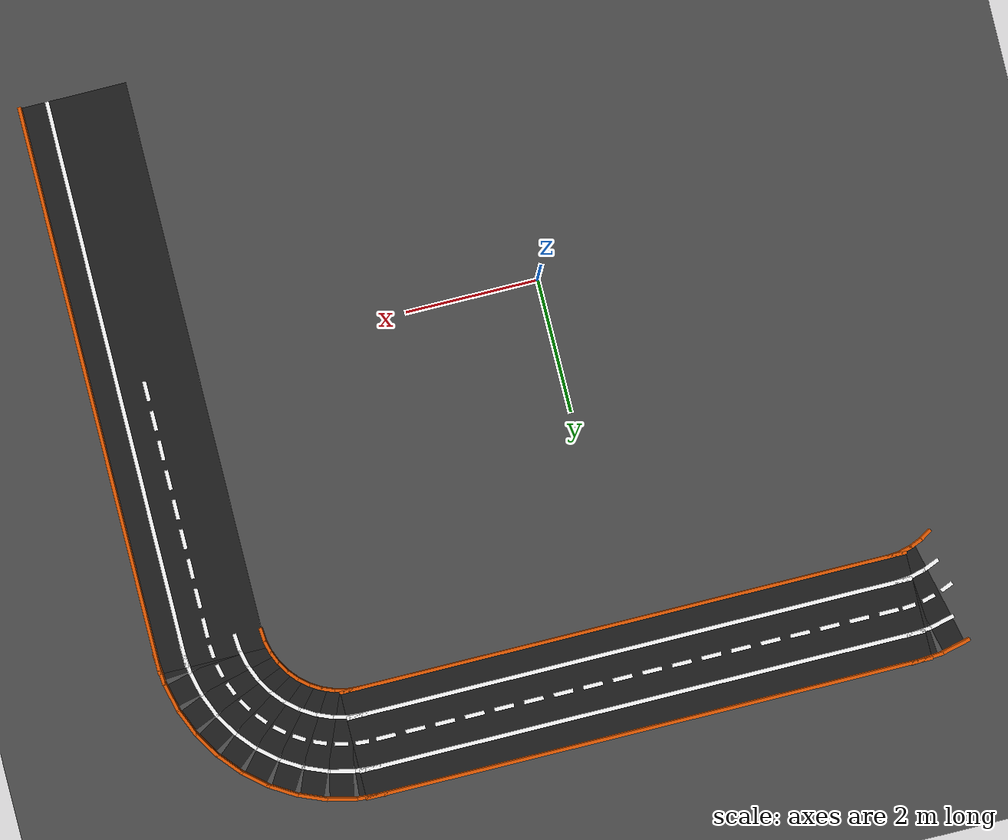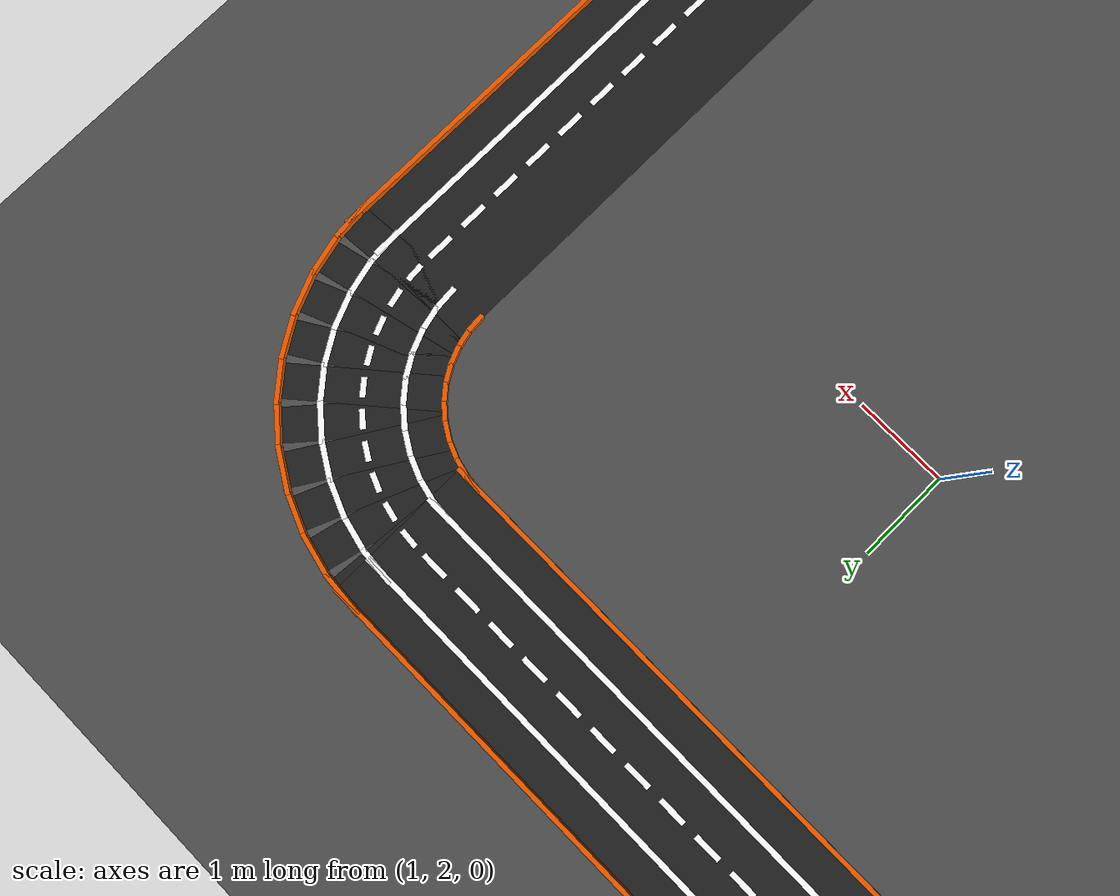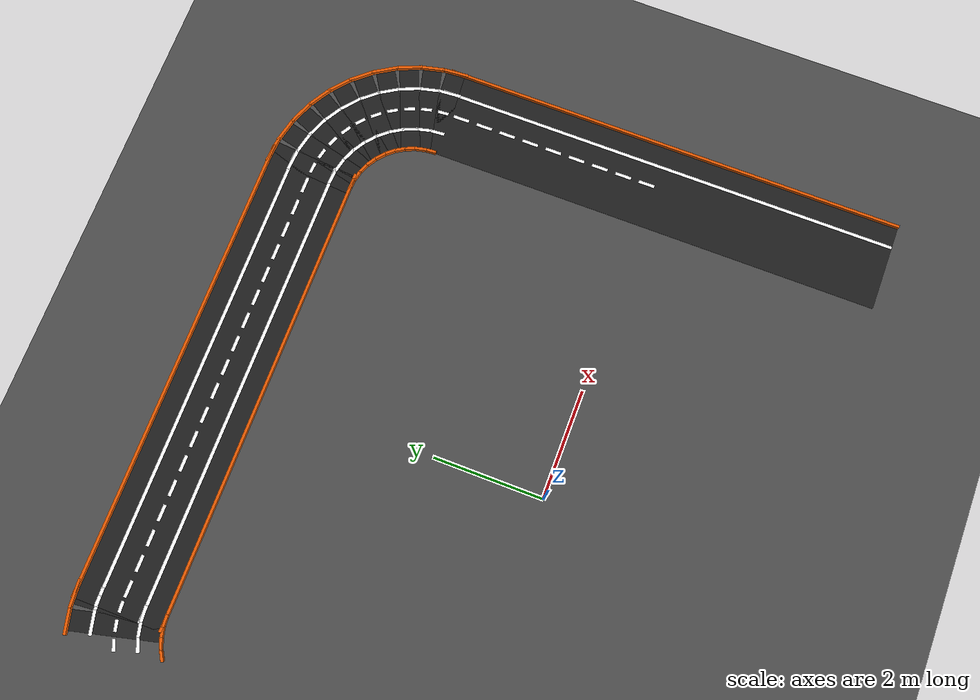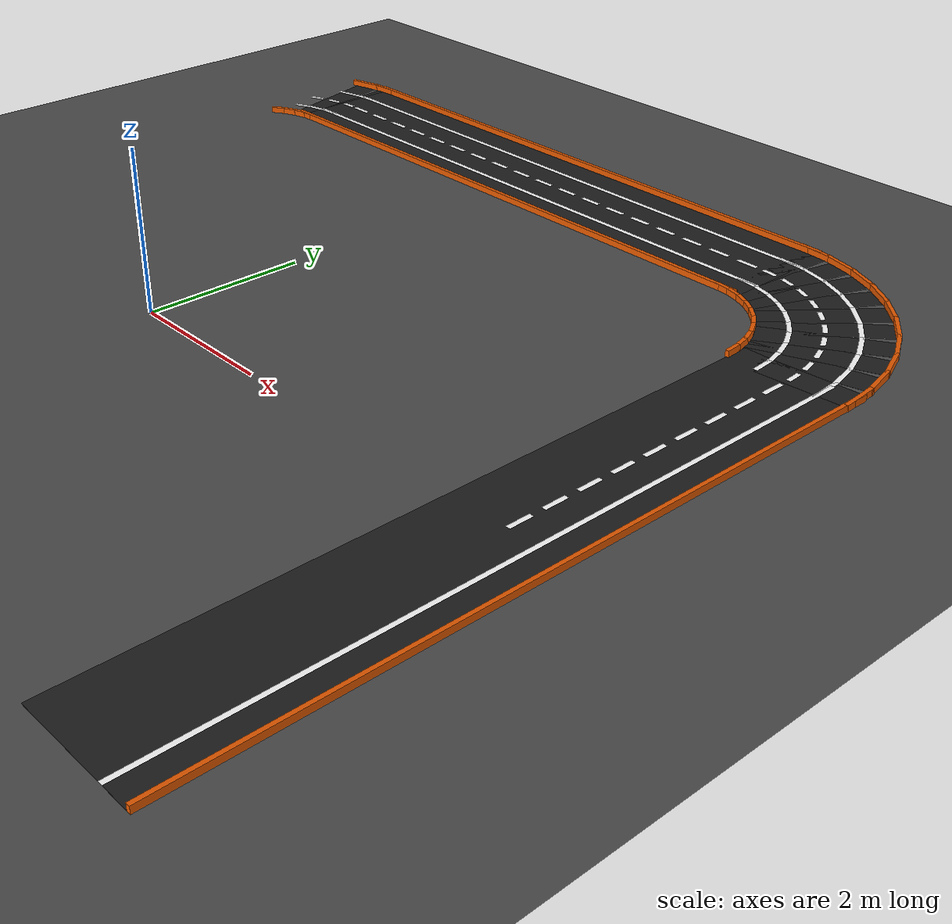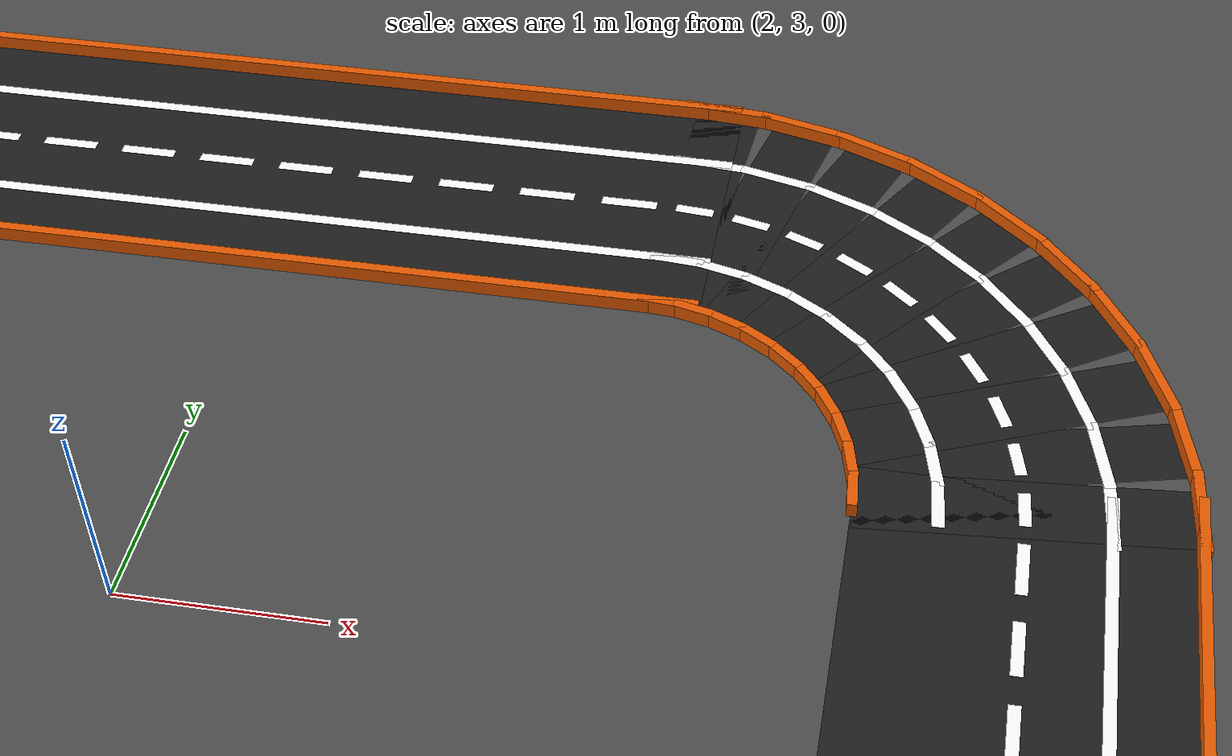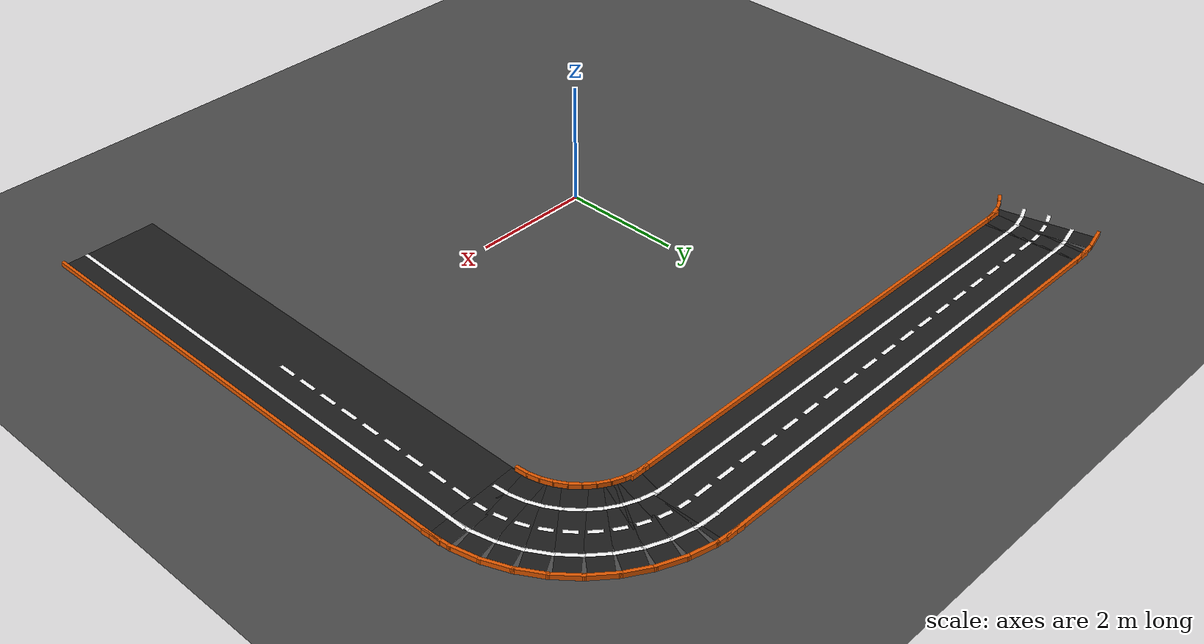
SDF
<sdf version="1.6">
 <world name="qcar_oval">
  <model name="ground_plane">
   <static>true</static>
   <link name="link">
    <collision name="collision">
     <geometry><plane><normal>0 0 1</normal><size>200 200</size></plane></geometry>
    </collision>
    <visual name="visual">
     <geometry><plane><normal>0 0 1</normal><size>200 200</size></plane></geometry>
     <material><ambient>0.3 0.3 0.3 1</ambient><diffuse>0.3 0.3 0.3 1</diffuse></material>
    </visual>
   </link>
  </model>
  <model name="m23">
   <static>true</static>
   <pose>0.0000 6.0000 0.00100 0 0 0.00000</pose>
   <link name="l">
    <visual name="v">
     <geometry><box><size>8.6000 1.6000 0.0010</size></box></geometry>
     <material><ambient>0.12 0.12 0.12 1</ambient><diffuse>0.12 0.12 0.12 1</diffuse></material>
    </visual>
   </link>
  </model>
  <model name="m24">
   <static>true</static>
   <pose>0.0000 5.2000 0.04000 0 0 0.00000</pose>
   <link name="l">
    <visual name="v">
     <geometry><box><size>8.6000 0.0500 0.0800</size></box></geometry>
     <material><ambient>0.9 0.35 0.0 1</ambient><diffuse>0.9 0.35 0.0 1</diffuse></material>
    </visual>
   </link>
  </model>
  <model name="m25">
   <static>true</static>
   <pose>0.0000 6.8000 0.04000 0 0 0.00000</pose>
   <link name="l">
    <visual name="v">
     <geometry><box><size>8.6000 0.0500 0.0800</size></box></geometry>
     <material><ambient>0.9 0.35 0.0 1</ambient><diffuse>0.9 0.35 0.0 1</diffuse></material>
    </visual>
   </link>
  </model>
  <model name="m26">
   <static>true</static>
   <pose>0.0000 5.6000 0.00200 0 0 0.00000</pose>
   <link name="l">
    <visual name="v">
     <geometry><box><size>8.6000 0.0600 0.0010</size></box></geometry>
     <material><ambient>1 1 1 1</ambient><diffuse>1 1 1 1</diffuse></material>
    </visual>
   </link>
  </model>
  <model name="m27">
   <static>true</static>
   <pose>0.0000 6.4000 0.00200 0 0 0.00000</pose>
   <link name="l">
    <visual name="v">
     <geometry><box><size>8.6000 0.0600 0.0010</size></box></geometry>
     <material><ambient>1 1 1 1</ambient><diffuse>1 1 1 1</diffuse></material>
    </visual>
   </link>
  </model>
  <model name="m28">
   <static>true</static>
   <pose>-3.8500 6.0000 0.00200 0 0 0.00000</pose>
   <link name="l">
    <visual name="v">
     <geometry><box><size>0.3000 0.0600 0.0010</size></box></geometry>
     <material><ambient>1 1 1 1</ambient><diffuse>1 1 1 1</diffuse></material>
    </visual>
   </link>
  </model>
  <model name="m29">
   <static>true</static>
   <pose>-3.4000 6.0000 0.00200 0 0 0.00000</pose>
   <link name="l">
    <visual name="v">
     <geometry><box><size>0.3000 0.0600 0.0010</size></box></geometry>
     <material><ambient>1 1 1 1</ambient><diffuse>1 1 1 1</diffuse></material>
    </visual>
   </link>
  </model>
  <model name="m30">
   <static>true</static>
   <pose>-2.9500 6.0000 0.00200 0 0 0.00000</pose>
   <link name="l">
    <visual name="v">
     <geometry><box><size>0.3000 0.0600 0.0010</size></box></geometry>
     <material><ambient>1 1 1 1</ambient><diffuse>1 1 1 1</diffuse></material>
    </visual>
   </link>
  </model>
  <model name="m31">
   <static>true</static>
   <pose>-2.5000 6.0000 0.00200 0 0 0.00000</pose>
   <link name="l">
    <visual name="v">
     <geometry><box><size>0.3000 0.0600 0.0010</size></box></geometry>
     <material><ambient>1 1 1 1</ambient><diffuse>1 1 1 1</diffuse></material>
    </visual>
   </link>
  </model>
  <model name="m32">
   <static>true</static>
   <pose>-2.0500 6.0000 0.00200 0 0 0.00000</pose>
   <link name="l">
    <visual name="v">
     <geometry><box><size>0.3000 0.0600 0.0010</size></box></geometry>
     <material><ambient>1 1 1 1</ambient><diffuse>1 1 1 1</diffuse></material>
    </visual>
   </link>
  </model>
  <model name="m33">
   <static>true</static>
   <pose>-1.6000 6.0000 0.00200 0 0 0.00000</pose>
   <link name="l">
    <visual name="v">
     <geometry><box><size>0.3000 0.0600 0.0010</size></box></geometry>
     <material><ambient>1 1 1 1</ambient><diffuse>1 1 1 1</diffuse></material>
    </visual>
   </link>
  </model>
  <model name="m34">
   <static>true</static>
   <pose>-1.1500 6.0000 0.00200 0 0 0.00000</pose>
   <link name="l">
    <visual name="v">
     <geometry><box><size>0.3000 0.0600 0.0010</size></box></geometry>
     <material><ambient>1 1 1 1</ambient><diffuse>1 1 1 1</diffuse></material>
    </visual>
   </link>
  </model>
  <model name="m35">
   <static>true</static>
   <pose>-0.7000 6.0000 0.00200 0 0 0.00000</pose>
   <link name="l">
    <visual name="v">
     <geometry><box><size>0.3000 0.0600 0.0010</size></box></geometry>
     <material><ambient>1 1 1 1</ambient><diffuse>1 1 1 1</diffuse></material>
    </visual>
   </link>
  </model>
  <model name="m36">
   <static>true</static>
   <pose>-0.2500 6.0000 0.00200 0 0 0.00000</pose>
   <link name="l">
    <visual name="v">
     <geometry><box><size>0.3000 0.0600 0.0010</size></box></geometry>
     <material><ambient>1 1 1 1</ambient><diffuse>1 1 1 1</diffuse></material>
    </visual>
   </link>
  </model>
  <model name="m37">
   <static>true</static>
   <pose>0.2000 6.0000 0.00200 0 0 0.00000</pose>
   <link name="l">
    <visual name="v">
     <geometry><box><size>0.3000 0.0600 0.0010</size></box></geometry>
     <material><ambient>1 1 1 1</ambient><diffuse>1 1 1 1</diffuse></material>
    </visual>
   </link>
  </model>
  <model name="m38">
   <static>true</static>
   <pose>0.6500 6.0000 0.00200 0 0 0.00000</pose>
   <link name="l">
    <visual name="v">
     <geometry><box><size>0.3000 0.0600 0.0010</size></box></geometry>
     <material><ambient>1 1 1 1</ambient><diffuse>1 1 1 1</diffuse></material>
    </visual>
   </link>
  </model>
  <model name="m39">
   <static>true</static>
   <pose>1.1000 6.0000 0.00200 0 0 0.00000</pose>
   <link name="l">
    <visual name="v">
     <geometry><box><size>0.3000 0.0600 0.0010</size></box></geometry>
     <material><ambient>1 1 1 1</ambient><diffuse>1 1 1 1</diffuse></material>
    </visual>
   </link>
  </model>
  <model name="m40">
   <static>true</static>
   <pose>1.5500 6.0000 0.00200 0 0 0.00000</pose>
   <link name="l">
    <visual name="v">
     <geometry><box><size>0.3000 0.0600 0.0010</size></box></geometry>
     <material><ambient>1 1 1 1</ambient><diffuse>1 1 1 1</diffuse></material>
    </visual>
   </link>
  </model>
  <model name="m41">
   <static>true</static>
   <pose>2.0000 6.0000 0.00200 0 0 0.00000</pose>
   <link name="l">
    <visual name="v">
     <geometry><box><size>0.3000 0.0600 0.0010</size></box></geometry>
     <material><ambient>1 1 1 1</ambient><diffuse>1 1 1 1</diffuse></material>
    </visual>
   </link>
  </model>
  <model name="m42">
   <static>true</static>
   <pose>2.4500 6.0000 0.00200 0 0 0.00000</pose>
   <link name="l">
    <visual name="v">
     <geometry><box><size>0.3000 0.0600 0.0010</size></box></geometry>
     <material><ambient>1 1 1 1</ambient><diffuse>1 1 1 1</diffuse></material>
    </visual>
   </link>
  </model>
  <model name="m43">
   <static>true</static>
   <pose>2.9000 6.0000 0.00200 0 0 0.00000</pose>
   <link name="l">
    <visual name="v">
     <geometry><box><size>0.3000 0.0600 0.0010</size></box></geometry>
     <material><ambient>1 1 1 1</ambient><diffuse>1 1 1 1</diffuse></material>
    </visual>
   </link>
  </model>
  <model name="m44">
   <static>true</static>
   <pose>3.3500 6.0000 0.00200 0 0 0.00000</pose>
   <link name="l">
    <visual name="v">
     <geometry><box><size>0.3000 0.0600 0.0010</size></box></geometry>
     <material><ambient>1 1 1 1</ambient><diffuse>1 1 1 1</diffuse></material>
    </visual>
   </link>
  </model>
  <model name="m45">
   <static>true</static>
   <pose>3.8000 6.0000 0.00200 0 0 0.00000</pose>
   <link name="l">
    <visual name="v">
     <geometry><box><size>0.3000 0.0600 0.0010</size></box></geometry>
     <material><ambient>1 1 1 1</ambient><diffuse>1 1 1 1</diffuse></material>
    </visual>
   </link>
  </model>
  <model name="m46">
   <static>true</static>
   <pose>6.0000 0.0000 0.00100 0 0 0.00000</pose>
   <link name="l">
    <visual name="v">
     <geometry><box><size>1.6000 8.6000 0.0010</size></box></geometry>
     <material><ambient>0.12 0.12 0.12 1</ambient><diffuse>0.12 0.12 0.12 1</diffuse></material>
    </visual>
   </link>
  </model>
  <model name="m48">
   <static>true</static>
   <pose>6.8000 0.0000 0.04000 0 0 0.00000</pose>
   <link name="l">
    <visual name="v">
     <geometry><box><size>0.0500 8.6000 0.0800</size></box></geometry>
     <material><ambient>0.9 0.35 0.0 1</ambient><diffuse>0.9 0.35 0.0 1</diffuse></material>
    </visual>
   </link>
  </model>
  <model name="m50">
   <static>true</static>
   <pose>6.4000 0.0000 0.00200 0 0 0.00000</pose>
   <link name="l">
    <visual name="v">
     <geometry><box><size>0.0600 8.6000 0.0010</size></box></geometry>
     <material><ambient>1 1 1 1</ambient><diffuse>1 1 1 1</diffuse></material>
    </visual>
   </link>
  </model>
  <model name="m60">
   <static>true</static>
   <pose>6.0000 0.2000 0.00200 0 0 0.00000</pose>
   <link name="l">
    <visual name="v">
     <geometry><box><size>0.0600 0.3000 0.0010</size></box></geometry>
     <material><ambient>1 1 1 1</ambient><diffuse>1 1 1 1</diffuse></material>
    </visual>
   </link>
  </model>
  <model name="m61">
   <static>true</static>
   <pose>6.0000 0.6500 0.00200 0 0 0.00000</pose>
   <link name="l">
    <visual name="v">
     <geometry><box><size>0.0600 0.3000 0.0010</size></box></geometry>
     <material><ambient>1 1 1 1</ambient><diffuse>1 1 1 1</diffuse></material>
    </visual>
   </link>
  </model>
  <model name="m62">
   <static>true</static>
   <pose>6.0000 1.1000 0.00200 0 0 0.00000</pose>
   <link name="l">
    <visual name="v">
     <geometry><box><size>0.0600 0.3000 0.0010</size></box></geometry>
     <material><ambient>1 1 1 1</ambient><diffuse>1 1 1 1</diffuse></material>
    </visual>
   </link>
  </model>
  <model name="m63">
   <static>true</static>
   <pose>6.0000 1.5500 0.00200 0 0 0.00000</pose>
   <link name="l">
    <visual name="v">
     <geometry><box><size>0.0600 0.3000 0.0010</size></box></geometry>
     <material><ambient>1 1 1 1</ambient><diffuse>1 1 1 1</diffuse></material>
    </visual>
   </link>
  </model>
  <model name="m64">
   <static>true</static>
   <pose>6.0000 2.0000 0.00200 0 0 0.00000</pose>
   <link name="l">
    <visual name="v">
     <geometry><box><size>0.0600 0.3000 0.0010</size></box></geometry>
     <material><ambient>1 1 1 1</ambient><diffuse>1 1 1 1</diffuse></material>
    </visual>
   </link>
  </model>
  <model name="m65">
   <static>true</static>
   <pose>6.0000 2.4500 0.00200 0 0 0.00000</pose>
   <link name="l">
    <visual name="v">
     <geometry><box><size>0.0600 0.3000 0.0010</size></box></geometry>
     <material><ambient>1 1 1 1</ambient><diffuse>1 1 1 1</diffuse></material>
    </visual>
   </link>
  </model>
  <model name="m66">
   <static>true</static>
   <pose>6.0000 2.9000 0.00200 0 0 0.00000</pose>
   <link name="l">
    <visual name="v">
     <geometry><box><size>0.0600 0.3000 0.0010</size></box></geometry>
     <material><ambient>1 1 1 1</ambient><diffuse>1 1 1 1</diffuse></material>
    </visual>
   </link>
  </model>
  <model name="m67">
   <static>true</static>
   <pose>6.0000 3.3500 0.00200 0 0 0.00000</pose>
   <link name="l">
    <visual name="v">
     <geometry><box><size>0.0600 0.3000 0.0010</size></box></geometry>
     <material><ambient>1 1 1 1</ambient><diffuse>1 1 1 1</diffuse></material>
    </visual>
   </link>
  </model>
  <model name="m68">
   <static>true</static>
   <pose>6.0000 3.8000 0.00200 0 0 0.00000</pose>
   <link name="l">
    <visual name="v">
     <geometry><box><size>0.0600 0.3000 0.0010</size></box></geometry>
     <material><ambient>1 1 1 1</ambient><diffuse>1 1 1 1</diffuse></material>
    </visual>
   </link>
  </model>
  <model name="m152">
   <static>true</static>
   <pose>5.9938 4.1569 0.00100 0 0 1.64934</pose>
   <link name="l">
    <visual name="v">
     <geometry><box><size>0.3519 1.6000 0.0010</size></box></geometry>
     <material><ambient>0.12 0.12 0.12 1</ambient><diffuse>0.12 0.12 0.12 1</diffuse></material>
    </visual>
   </link>
  </model>
  <model name="m153">
   <static>true</static>
   <pose>5.1963 4.0942 0.04000 0 0 1.64934</pose>
   <link name="l">
    <visual name="v">
     <geometry><box><size>0.2111 0.0500 0.0800</size></box></geometry>
     <material><ambient>0.9 0.35 0.0 1</ambient><diffuse>0.9 0.35 0.0 1</diffuse></material>
    </visual>
   </link>
  </model>
  <model name="m154">
   <static>true</static>
   <pose>6.7914 4.2197 0.04000 0 0 1.64934</pose>
   <link name="l">
    <visual name="v">
     <geometry><box><size>0.4926 0.0500 0.0800</size></box></geometry>
     <material><ambient>0.9 0.35 0.0 1</ambient><diffuse>0.9 0.35 0.0 1</diffuse></material>
    </visual>
   </link>
  </model>
  <model name="m155">
   <static>true</static>
   <pose>5.5951 4.1255 0.00200 0 0 1.64934</pose>
   <link name="l">
    <visual name="v">
     <geometry><box><size>0.2815 0.0600 0.0010</size></box></geometry>
     <material><ambient>1 1 1 1</ambient><diffuse>1 1 1 1</diffuse></material>
    </visual>
   </link>
  </model>
  <model name="m156">
   <static>true</static>
   <pose>6.3926 4.1883 0.00200 0 0 1.64934</pose>
   <link name="l">
    <visual name="v">
     <geometry><box><size>0.4222 0.0600 0.0010</size></box></geometry>
     <material><ambient>1 1 1 1</ambient><diffuse>1 1 1 1</diffuse></material>
    </visual>
   </link>
  </model>
  <model name="m157">
   <static>true</static>
   <pose>5.9938 4.1569 0.00200 0 0 1.64934</pose>
   <link name="l">
    <visual name="v">
     <geometry><box><size>0.2042 0.0600 0.0010</size></box></geometry>
     <material><ambient>1 1 1 1</ambient><diffuse>1 1 1 1</diffuse></material>
    </visual>
   </link>
  </model>
  <model name="m158">
   <static>true</static>
   <pose>5.9447 4.4669 0.00100 0 0 1.80642</pose>
   <link name="l">
    <visual name="v">
     <geometry><box><size>0.3519 1.6000 0.0010</size></box></geometry>
     <material><ambient>0.12 0.12 0.12 1</ambient><diffuse>0.12 0.12 0.12 1</diffuse></material>
    </visual>
   </link>
  </model>
  <model name="m159">
   <static>true</static>
   <pose>5.1668 4.2801 0.04000 0 0 1.80642</pose>
   <link name="l">
    <visual name="v">
     <geometry><box><size>0.2111 0.0500 0.0800</size></box></geometry>
     <material><ambient>0.9 0.35 0.0 1</ambient><diffuse>0.9 0.35 0.0 1</diffuse></material>
    </visual>
   </link>
  </model>
  <model name="m160">
   <static>true</static>
   <pose>6.7226 4.6536 0.04000 0 0 1.80642</pose>
   <link name="l">
    <visual name="v">
     <geometry><box><size>0.4926 0.0500 0.0800</size></box></geometry>
     <material><ambient>0.9 0.35 0.0 1</ambient><diffuse>0.9 0.35 0.0 1</diffuse></material>
    </visual>
   </link>
  </model>
  <model name="m161">
   <static>true</static>
   <pose>5.5558 4.3735 0.00200 0 0 1.80642</pose>
   <link name="l">
    <visual name="v">
     <geometry><box><size>0.2815 0.0600 0.0010</size></box></geometry>
     <material><ambient>1 1 1 1</ambient><diffuse>1 1 1 1</diffuse></material>
    </visual>
   </link>
  </model>
  <model name="m162">
   <static>true</static>
   <pose>6.3337 4.5603 0.00200 0 0 1.80642</pose>
   <link name="l">
    <visual name="v">
     <geometry><box><size>0.4222 0.0600 0.0010</size></box></geometry>
     <material><ambient>1 1 1 1</ambient><diffuse>1 1 1 1</diffuse></material>
    </visual>
   </link>
  </model>
  <model name="m163">
   <static>true</static>
   <pose>5.9447 4.4669 0.00200 0 0 1.80642</pose>
   <link name="l">
    <visual name="v">
     <geometry><box><size>0.2042 0.0600 0.0010</size></box></geometry>
     <material><ambient>1 1 1 1</ambient><diffuse>1 1 1 1</diffuse></material>
    </visual>
   </link>
  </model>
  <model name="m164">
   <static>true</static>
   <pose>5.8478 4.7654 0.00100 0 0 1.96350</pose>
   <link name="l">
    <visual name="v">
     <geometry><box><size>0.3519 1.6000 0.0010</size></box></geometry>
     <material><ambient>0.12 0.12 0.12 1</ambient><diffuse>0.12 0.12 0.12 1</diffuse></material>
    </visual>
   </link>
  </model>
  <model name="m165">
   <static>true</static>
   <pose>5.1087 4.4592 0.04000 0 0 1.96350</pose>
   <link name="l">
    <visual name="v">
     <geometry><box><size>0.2111 0.0500 0.0800</size></box></geometry>
     <material><ambient>0.9 0.35 0.0 1</ambient><diffuse>0.9 0.35 0.0 1</diffuse></material>
    </visual>
   </link>
  </model>
  <model name="m166">
   <static>true</static>
   <pose>6.5869 5.0715 0.04000 0 0 1.96350</pose>
   <link name="l">
    <visual name="v">
     <geometry><box><size>0.4926 0.0500 0.0800</size></box></geometry>
     <material><ambient>0.9 0.35 0.0 1</ambient><diffuse>0.9 0.35 0.0 1</diffuse></material>
    </visual>
   </link>
  </model>
  <model name="m167">
   <static>true</static>
   <pose>5.4782 4.6123 0.00200 0 0 1.96350</pose>
   <link name="l">
    <visual name="v">
     <geometry><box><size>0.2815 0.0600 0.0010</size></box></geometry>
     <material><ambient>1 1 1 1</ambient><diffuse>1 1 1 1</diffuse></material>
    </visual>
   </link>
  </model>
  <model name="m168">
   <static>true</static>
   <pose>6.2173 4.9184 0.00200 0 0 1.96350</pose>
   <link name="l">
    <visual name="v">
     <geometry><box><size>0.4222 0.0600 0.0010</size></box></geometry>
     <material><ambient>1 1 1 1</ambient><diffuse>1 1 1 1</diffuse></material>
    </visual>
   </link>
  </model>
  <model name="m169">
   <static>true</static>
   <pose>5.8478 4.7654 0.00200 0 0 1.96350</pose>
   <link name="l">
    <visual name="v">
     <geometry><box><size>0.2042 0.0600 0.0010</size></box></geometry>
     <material><ambient>1 1 1 1</ambient><diffuse>1 1 1 1</diffuse></material>
    </visual>
   </link>
  </model>
  <model name="m170">
   <static>true</static>
   <pose>5.7053 5.0450 0.00100 0 0 2.12058</pose>
   <link name="l">
    <visual name="v">
     <geometry><box><size>0.3519 1.6000 0.0010</size></box></geometry>
     <material><ambient>0.12 0.12 0.12 1</ambient><diffuse>0.12 0.12 0.12 1</diffuse></material>
    </visual>
   </link>
  </model>
  <model name="m171">
   <static>true</static>
   <pose>5.0232 4.6270 0.04000 0 0 2.12058</pose>
   <link name="l">
    <visual name="v">
     <geometry><box><size>0.2111 0.0500 0.0800</size></box></geometry>
     <material><ambient>0.9 0.35 0.0 1</ambient><diffuse>0.9 0.35 0.0 1</diffuse></material>
    </visual>
   </link>
  </model>
  <model name="m172">
   <static>true</static>
   <pose>6.3874 5.4630 0.04000 0 0 2.12058</pose>
   <link name="l">
    <visual name="v">
     <geometry><box><size>0.4926 0.0500 0.0800</size></box></geometry>
     <material><ambient>0.9 0.35 0.0 1</ambient><diffuse>0.9 0.35 0.0 1</diffuse></material>
    </visual>
   </link>
  </model>
  <model name="m173">
   <static>true</static>
   <pose>5.3642 4.8360 0.00200 0 0 2.12058</pose>
   <link name="l">
    <visual name="v">
     <geometry><box><size>0.2815 0.0600 0.0010</size></box></geometry>
     <material><ambient>1 1 1 1</ambient><diffuse>1 1 1 1</diffuse></material>
    </visual>
   </link>
  </model>
  <model name="m174">
   <static>true</static>
   <pose>6.0463 5.2540 0.00200 0 0 2.12058</pose>
   <link name="l">
    <visual name="v">
     <geometry><box><size>0.4222 0.0600 0.0010</size></box></geometry>
     <material><ambient>1 1 1 1</ambient><diffuse>1 1 1 1</diffuse></material>
    </visual>
   </link>
  </model>
  <model name="m175">
   <static>true</static>
   <pose>5.7053 5.0450 0.00200 0 0 2.12058</pose>
   <link name="l">
    <visual name="v">
     <geometry><box><size>0.2042 0.0600 0.0010</size></box></geometry>
     <material><ambient>1 1 1 1</ambient><diffuse>1 1 1 1</diffuse></material>
    </visual>
   </link>
  </model>
  <model name="m176">
   <static>true</static>
   <pose>5.5208 5.2989 0.00100 0 0 2.27765</pose>
   <link name="l">
    <visual name="v">
     <geometry><box><size>0.3519 1.6000 0.0010</size></box></geometry>
     <material><ambient>0.12 0.12 0.12 1</ambient><diffuse>0.12 0.12 0.12 1</diffuse></material>
    </visual>
   </link>
  </model>
  <model name="m177">
   <static>true</static>
   <pose>4.9125 4.7793 0.04000 0 0 2.27765</pose>
   <link name="l">
    <visual name="v">
     <geometry><box><size>0.2111 0.0500 0.0800</size></box></geometry>
     <material><ambient>0.9 0.35 0.0 1</ambient><diffuse>0.9 0.35 0.0 1</diffuse></material>
    </visual>
   </link>
  </model>
  <model name="m178">
   <static>true</static>
   <pose>6.1291 5.8185 0.04000 0 0 2.27765</pose>
   <link name="l">
    <visual name="v">
     <geometry><box><size>0.4926 0.0500 0.0800</size></box></geometry>
     <material><ambient>0.9 0.35 0.0 1</ambient><diffuse>0.9 0.35 0.0 1</diffuse></material>
    </visual>
   </link>
  </model>
  <model name="m179">
   <static>true</static>
   <pose>5.2166 5.0391 0.00200 0 0 2.27765</pose>
   <link name="l">
    <visual name="v">
     <geometry><box><size>0.2815 0.0600 0.0010</size></box></geometry>
     <material><ambient>1 1 1 1</ambient><diffuse>1 1 1 1</diffuse></material>
    </visual>
   </link>
  </model>
  <model name="m180">
   <static>true</static>
   <pose>5.8250 5.5587 0.00200 0 0 2.27765</pose>
   <link name="l">
    <visual name="v">
     <geometry><box><size>0.4222 0.0600 0.0010</size></box></geometry>
     <material><ambient>1 1 1 1</ambient><diffuse>1 1 1 1</diffuse></material>
    </visual>
   </link>
  </model>
  <model name="m181">
   <static>true</static>
   <pose>5.5208 5.2989 0.00200 0 0 2.27765</pose>
   <link name="l">
    <visual name="v">
     <geometry><box><size>0.2042 0.0600 0.0010</size></box></geometry>
     <material><ambient>1 1 1 1</ambient><diffuse>1 1 1 1</diffuse></material>
    </visual>
   </link>
  </model>
  <model name="m182">
   <static>true</static>
   <pose>5.2989 5.5208 0.00100 0 0 2.43473</pose>
   <link name="l">
    <visual name="v">
     <geometry><box><size>0.3519 1.6000 0.0010</size></box></geometry>
     <material><ambient>0.12 0.12 0.12 1</ambient><diffuse>0.12 0.12 0.12 1</diffuse></material>
    </visual>
   </link>
  </model>
  <model name="m183">
   <static>true</static>
   <pose>4.7793 4.9125 0.04000 0 0 2.43473</pose>
   <link name="l">
    <visual name="v">
     <geometry><box><size>0.2111 0.0500 0.0800</size></box></geometry>
     <material><ambient>0.9 0.35 0.0 1</ambient><diffuse>0.9 0.35 0.0 1</diffuse></material>
    </visual>
   </link>
  </model>
  <model name="m184">
   <static>true</static>
   <pose>5.8185 6.1291 0.04000 0 0 2.43473</pose>
   <link name="l">
    <visual name="v">
     <geometry><box><size>0.4926 0.0500 0.0800</size></box></geometry>
     <material><ambient>0.9 0.35 0.0 1</ambient><diffuse>0.9 0.35 0.0 1</diffuse></material>
    </visual>
   </link>
  </model>
  <model name="m185">
   <static>true</static>
   <pose>5.0391 5.2166 0.00200 0 0 2.43473</pose>
   <link name="l">
    <visual name="v">
     <geometry><box><size>0.2815 0.0600 0.0010</size></box></geometry>
     <material><ambient>1 1 1 1</ambient><diffuse>1 1 1 1</diffuse></material>
    </visual>
   </link>
  </model>
  <model name="m186">
   <static>true</static>
   <pose>5.5587 5.8250 0.00200 0 0 2.43473</pose>
   <link name="l">
    <visual name="v">
     <geometry><box><size>0.4222 0.0600 0.0010</size></box></geometry>
     <material><ambient>1 1 1 1</ambient><diffuse>1 1 1 1</diffuse></material>
    </visual>
   </link>
  </model>
  <model name="m187">
   <static>true</static>
   <pose>5.2989 5.5208 0.00200 0 0 2.43473</pose>
   <link name="l">
    <visual name="v">
     <geometry><box><size>0.2042 0.0600 0.0010</size></box></geometry>
     <material><ambient>1 1 1 1</ambient><diffuse>1 1 1 1</diffuse></material>
    </visual>
   </link>
  </model>
  <model name="m188">
   <static>true</static>
   <pose>5.0450 5.7053 0.00100 0 0 2.59181</pose>
   <link name="l">
    <visual name="v">
     <geometry><box><size>0.3519 1.6000 0.0010</size></box></geometry>
     <material><ambient>0.12 0.12 0.12 1</ambient><diffuse>0.12 0.12 0.12 1</diffuse></material>
    </visual>
   </link>
  </model>
  <model name="m189">
   <static>true</static>
   <pose>4.6270 5.0232 0.04000 0 0 2.59181</pose>
   <link name="l">
    <visual name="v">
     <geometry><box><size>0.2111 0.0500 0.0800</size></box></geometry>
     <material><ambient>0.9 0.35 0.0 1</ambient><diffuse>0.9 0.35 0.0 1</diffuse></material>
    </visual>
   </link>
  </model>
  <model name="m190">
   <static>true</static>
   <pose>5.4630 6.3874 0.04000 0 0 2.59181</pose>
   <link name="l">
    <visual name="v">
     <geometry><box><size>0.4926 0.0500 0.0800</size></box></geometry>
     <material><ambient>0.9 0.35 0.0 1</ambient><diffuse>0.9 0.35 0.0 1</diffuse></material>
    </visual>
   </link>
  </model>
  <model name="m191">
   <static>true</static>
   <pose>4.8360 5.3642 0.00200 0 0 2.59181</pose>
   <link name="l">
    <visual name="v">
     <geometry><box><size>0.2815 0.0600 0.0010</size></box></geometry>
     <material><ambient>1 1 1 1</ambient><diffuse>1 1 1 1</diffuse></material>
    </visual>
   </link>
  </model>
  <model name="m192">
   <static>true</static>
   <pose>5.2540 6.0463 0.00200 0 0 2.59181</pose>
   <link name="l">
    <visual name="v">
     <geometry><box><size>0.4222 0.0600 0.0010</size></box></geometry>
     <material><ambient>1 1 1 1</ambient><diffuse>1 1 1 1</diffuse></material>
    </visual>
   </link>
  </model>
  <model name="m193">
   <static>true</static>
   <pose>5.0450 5.7053 0.00200 0 0 2.59181</pose>
   <link name="l">
    <visual name="v">
     <geometry><box><size>0.2042 0.0600 0.0010</size></box></geometry>
     <material><ambient>1 1 1 1</ambient><diffuse>1 1 1 1</diffuse></material>
    </visual>
   </link>
  </model>
  <model name="m194">
   <static>true</static>
   <pose>4.7654 5.8478 0.00100 0 0 2.74889</pose>
   <link name="l">
    <visual name="v">
     <geometry><box><size>0.3519 1.6000 0.0010</size></box></geometry>
     <material><ambient>0.12 0.12 0.12 1</ambient><diffuse>0.12 0.12 0.12 1</diffuse></material>
    </visual>
   </link>
  </model>
  <model name="m195">
   <static>true</static>
   <pose>4.4592 5.1087 0.04000 0 0 2.74889</pose>
   <link name="l">
    <visual name="v">
     <geometry><box><size>0.2111 0.0500 0.0800</size></box></geometry>
     <material><ambient>0.9 0.35 0.0 1</ambient><diffuse>0.9 0.35 0.0 1</diffuse></material>
    </visual>
   </link>
  </model>
  <model name="m196">
   <static>true</static>
   <pose>5.0715 6.5869 0.04000 0 0 2.74889</pose>
   <link name="l">
    <visual name="v">
     <geometry><box><size>0.4926 0.0500 0.0800</size></box></geometry>
     <material><ambient>0.9 0.35 0.0 1</ambient><diffuse>0.9 0.35 0.0 1</diffuse></material>
    </visual>
   </link>
  </model>
  <model name="m197">
   <static>true</static>
   <pose>4.6123 5.4782 0.00200 0 0 2.74889</pose>
   <link name="l">
    <visual name="v">
     <geometry><box><size>0.2815 0.0600 0.0010</size></box></geometry>
     <material><ambient>1 1 1 1</ambient><diffuse>1 1 1 1</diffuse></material>
    </visual>
   </link>
  </model>
  <model name="m198">
   <static>true</static>
   <pose>4.9184 6.2173 0.00200 0 0 2.74889</pose>
   <link name="l">
    <visual name="v">
     <geometry><box><size>0.4222 0.0600 0.0010</size></box></geometry>
     <material><ambient>1 1 1 1</ambient><diffuse>1 1 1 1</diffuse></material>
    </visual>
   </link>
  </model>
  <model name="m199">
   <static>true</static>
   <pose>4.7654 5.8478 0.00200 0 0 2.74889</pose>
   <link name="l">
    <visual name="v">
     <geometry><box><size>0.2042 0.0600 0.0010</size></box></geometry>
     <material><ambient>1 1 1 1</ambient><diffuse>1 1 1 1</diffuse></material>
    </visual>
   </link>
  </model>
  <model name="m200">
   <static>true</static>
   <pose>4.4669 5.9447 0.00100 0 0 2.90597</pose>
   <link name="l">
    <visual name="v">
     <geometry><box><size>0.3519 1.6000 0.0010</size></box></geometry>
     <material><ambient>0.12 0.12 0.12 1</ambient><diffuse>0.12 0.12 0.12 1</diffuse></material>
    </visual>
   </link>
  </model>
  <model name="m201">
   <static>true</static>
   <pose>4.2801 5.1668 0.04000 0 0 2.90597</pose>
   <link name="l">
    <visual name="v">
     <geometry><box><size>0.2111 0.0500 0.0800</size></box></geometry>
     <material><ambient>0.9 0.35 0.0 1</ambient><diffuse>0.9 0.35 0.0 1</diffuse></material>
    </visual>
   </link>
  </model>
  <model name="m202">
   <static>true</static>
   <pose>4.6536 6.7226 0.04000 0 0 2.90597</pose>
   <link name="l">
    <visual name="v">
     <geometry><box><size>0.4926 0.0500 0.0800</size></box></geometry>
     <material><ambient>0.9 0.35 0.0 1</ambient><diffuse>0.9 0.35 0.0 1</diffuse></material>
    </visual>
   </link>
  </model>
  <model name="m203">
   <static>true</static>
   <pose>4.3735 5.5558 0.00200 0 0 2.90597</pose>
   <link name="l">
    <visual name="v">
     <geometry><box><size>0.2815 0.0600 0.0010</size></box></geometry>
     <material><ambient>1 1 1 1</ambient><diffuse>1 1 1 1</diffuse></material>
    </visual>
   </link>
  </model>
  <model name="m204">
   <static>true</static>
   <pose>4.5603 6.3337 0.00200 0 0 2.90597</pose>
   <link name="l">
    <visual name="v">
     <geometry><box><size>0.4222 0.0600 0.0010</size></box></geometry>
     <material><ambient>1 1 1 1</ambient><diffuse>1 1 1 1</diffuse></material>
    </visual>
   </link>
  </model>
  <model name="m205">
   <static>true</static>
   <pose>4.4669 5.9447 0.00200 0 0 2.90597</pose>
   <link name="l">
    <visual name="v">
     <geometry><box><size>0.2042 0.0600 0.0010</size></box></geometry>
     <material><ambient>1 1 1 1</ambient><diffuse>1 1 1 1</diffuse></material>
    </visual>
   </link>
  </model>
  <model name="m206">
   <static>true</static>
   <pose>4.1569 5.9938 0.00100 0 0 3.06305</pose>
   <link name="l">
    <visual name="v">
     <geometry><box><size>0.3519 1.6000 0.0010</size></box></geometry>
     <material><ambient>0.12 0.12 0.12 1</ambient><diffuse>0.12 0.12 0.12 1</diffuse></material>
    </visual>
   </link>
  </model>
  <model name="m207">
   <static>true</static>
   <pose>4.0942 5.1963 0.04000 0 0 3.06305</pose>
   <link name="l">
    <visual name="v">
     <geometry><box><size>0.2111 0.0500 0.0800</size></box></geometry>
     <material><ambient>0.9 0.35 0.0 1</ambient><diffuse>0.9 0.35 0.0 1</diffuse></material>
    </visual>
   </link>
  </model>
  <model name="m208">
   <static>true</static>
   <pose>4.2197 6.7914 0.04000 0 0 3.06305</pose>
   <link name="l">
    <visual name="v">
     <geometry><box><size>0.4926 0.0500 0.0800</size></box></geometry>
     <material><ambient>0.9 0.35 0.0 1</ambient><diffuse>0.9 0.35 0.0 1</diffuse></material>
    </visual>
   </link>
  </model>
  <model name="m209">
   <static>true</static>
   <pose>4.1255 5.5951 0.00200 0 0 3.06305</pose>
   <link name="l">
    <visual name="v">
     <geometry><box><size>0.2815 0.0600 0.0010</size></box></geometry>
     <material><ambient>1 1 1 1</ambient><diffuse>1 1 1 1</diffuse></material>
    </visual>
   </link>
  </model>
  <model name="m210">
   <static>true</static>
   <pose>4.1883 6.3926 0.00200 0 0 3.06305</pose>
   <link name="l">
    <visual name="v">
     <geometry><box><size>0.4222 0.0600 0.0010</size></box></geometry>
     <material><ambient>1 1 1 1</ambient><diffuse>1 1 1 1</diffuse></material>
    </visual>
   </link>
  </model>
  <model name="m211">
   <static>true</static>
   <pose>4.1569 5.9938 0.00200 0 0 3.06305</pose>
   <link name="l">
    <visual name="v">
     <geometry><box><size>0.2042 0.0600 0.0010</size></box></geometry>
     <material><ambient>1 1 1 1</ambient><diffuse>1 1 1 1</diffuse></material>
    </visual>
   </link>
  </model>
  <model name="m212">
   <static>true</static>
   <pose>-4.1569 5.9938 0.00100 0 0 3.22013</pose>
   <link name="l">
    <visual name="v">
     <geometry><box><size>0.3519 1.6000 0.0010</size></box></geometry>
     <material><ambient>0.12 0.12 0.12 1</ambient><diffuse>0.12 0.12 0.12 1</diffuse></material>
    </visual>
   </link>
  </model>
  <model name="m213">
   <static>true</static>
   <pose>-4.0942 5.1963 0.04000 0 0 3.22013</pose>
   <link name="l">
    <visual name="v">
     <geometry><box><size>0.2111 0.0500 0.0800</size></box></geometry>
     <material><ambient>0.9 0.35 0.0 1</ambient><diffuse>0.9 0.35 0.0 1</diffuse></material>
    </visual>
   </link>
  </model>
  <model name="m214">
   <static>true</static>
   <pose>-4.2197 6.7914 0.04000 0 0 3.22013</pose>
   <link name="l">
    <visual name="v">
     <geometry><box><size>0.4926 0.0500 0.0800</size></box></geometry>
     <material><ambient>0.9 0.35 0.0 1</ambient><diffuse>0.9 0.35 0.0 1</diffuse></material>
    </visual>
   </link>
  </model>
  <model name="m215">
   <static>true</static>
   <pose>-4.1255 5.5951 0.00200 0 0 3.22013</pose>
   <link name="l">
    <visual name="v">
     <geometry><box><size>0.2815 0.0600 0.0010</size></box></geometry>
     <material><ambient>1 1 1 1</ambient><diffuse>1 1 1 1</diffuse></material>
    </visual>
   </link>
  </model>
  <model name="m216">
   <static>true</static>
   <pose>-4.1883 6.3926 0.00200 0 0 3.22013</pose>
   <link name="l">
    <visual name="v">
     <geometry><box><size>0.4222 0.0600 0.0010</size></box></geometry>
     <material><ambient>1 1 1 1</ambient><diffuse>1 1 1 1</diffuse></material>
    </visual>
   </link>
  </model>
  <model name="m217">
   <static>true</static>
   <pose>-4.1569 5.9938 0.00200 0 0 3.22013</pose>
   <link name="l">
    <visual name="v">
     <geometry><box><size>0.2042 0.0600 0.0010</size></box></geometry>
     <material><ambient>1 1 1 1</ambient><diffuse>1 1 1 1</diffuse></material>
    </visual>
   </link>
  </model>
  <model name="m218">
   <static>true</static>
   <pose>-4.4669 5.9447 0.00100 0 0 3.37721</pose>
   <link name="l">
    <visual name="v">
     <geometry><box><size>0.3519 1.6000 0.0010</size></box></geometry>
     <material><ambient>0.12 0.12 0.12 1</ambient><diffuse>0.12 0.12 0.12 1</diffuse></material>
    </visual>
   </link>
  </model>
  <model name="m219">
   <static>true</static>
   <pose>-4.2801 5.1668 0.04000 0 0 3.37721</pose>
   <link name="l">
    <visual name="v">
     <geometry><box><size>0.2111 0.0500 0.0800</size></box></geometry>
     <material><ambient>0.9 0.35 0.0 1</ambient><diffuse>0.9 0.35 0.0 1</diffuse></material>
    </visual>
   </link>
  </model>
  <model name="m220">
   <static>true</static>
   <pose>-4.6536 6.7226 0.04000 0 0 3.37721</pose>
   <link name="l">
    <visual name="v">
     <geometry><box><size>0.4926 0.0500 0.0800</size></box></geometry>
     <material><ambient>0.9 0.35 0.0 1</ambient><diffuse>0.9 0.35 0.0 1</diffuse></material>
    </visual>
   </link>
  </model>
  <model name="m221">
   <static>true</static>
   <pose>-4.3735 5.5558 0.00200 0 0 3.37721</pose>
   <link name="l">
    <visual name="v">
     <geometry><box><size>0.2815 0.0600 0.0010</size></box></geometry>
     <material><ambient>1 1 1 1</ambient><diffuse>1 1 1 1</diffuse></material>
    </visual>
   </link>
  </model>
  <model name="m222">
   <static>true</static>
   <pose>-4.5603 6.3337 0.00200 0 0 3.37721</pose>
   <link name="l">
    <visual name="v">
     <geometry><box><size>0.4222 0.0600 0.0010</size></box></geometry>
     <material><ambient>1 1 1 1</ambient><diffuse>1 1 1 1</diffuse></material>
    </visual>
   </link>
  </model>
  <model name="m223">
   <static>true</static>
   <pose>-4.4669 5.9447 0.00200 0 0 3.37721</pose>
   <link name="l">
    <visual name="v">
     <geometry><box><size>0.2042 0.0600 0.0010</size></box></geometry>
     <material><ambient>1 1 1 1</ambient><diffuse>1 1 1 1</diffuse></material>
    </visual>
   </link>
  </model>
  <model name="m225">
   <static>true</static>
   <pose>-4.4592 5.1087 0.04000 0 0 3.53429</pose>
   <link name="l">
    <visual name="v">
     <geometry><box><size>0.2111 0.0500 0.0800</size></box></geometry>
     <material><ambient>0.9 0.35 0.0 1</ambient><diffuse>0.9 0.35 0.0 1</diffuse></material>
    </visual>
   </link>
  </model>
  <model name="m227">
   <static>true</static>
   <pose>-4.6123 5.4782 0.00200 0 0 3.53429</pose>
   <link name="l">
    <visual name="v">
     <geometry><box><size>0.2815 0.0600 0.0010</size></box></geometry>
     <material><ambient>1 1 1 1</ambient><diffuse>1 1 1 1</diffuse></material>
    </visual>
   </link>
  </model>
  <model name="m229">
   <static>true</static>
   <pose>-4.7654 5.8478 0.00200 0 0 3.53429</pose>
   <link name="l">
    <visual name="v">
     <geometry><box><size>0.2042 0.0600 0.0010</size></box></geometry>
     <material><ambient>1 1 1 1</ambient><diffuse>1 1 1 1</diffuse></material>
    </visual>
   </link>
  </model>
  <model name="m231">
   <static>true</static>
   <pose>-4.6270 5.0232 0.04000 0 0 3.69137</pose>
   <link name="l">
    <visual name="v">
     <geometry><box><size>0.2111 0.0500 0.0800</size></box></geometry>
     <material><ambient>0.9 0.35 0.0 1</ambient><diffuse>0.9 0.35 0.0 1</diffuse></material>
    </visual>
   </link>
  </model>
 </world>
</sdf>
